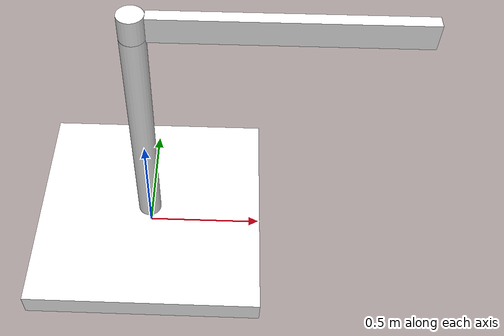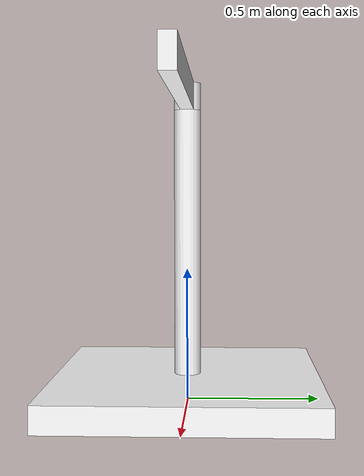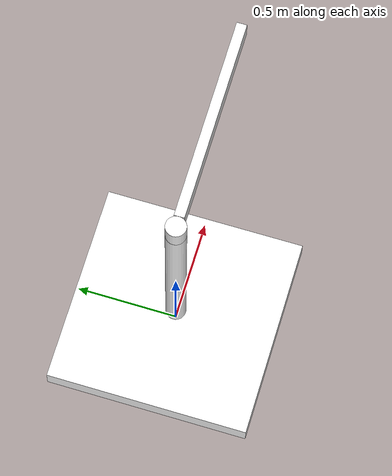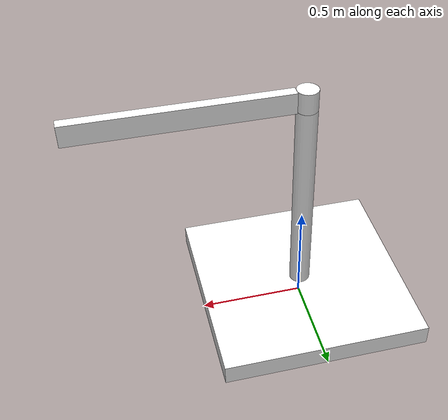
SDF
<?xml version="1.0" ?>
<sdf version="1.5">
  <model name="dxsim-one">
    <link name="arm_base">
      <inertial>
        <pose>0 0 0.00099 0 0 0</pose>
        <inertia>
          <ixx>1.11</ixx>
          <ixy>0</ixy>
          <ixz>0</ixz>
          <iyy>100.11</iyy>
          <iyz>0</iyz>
          <izz>1.01</izz>
        </inertia>
        <mass>101.0</mass>
      </inertial>
      <collision name="arm_base_geom">
        <pose>0 0 0.05 0 0 0</pose>
        <geometry>
          <box>
            <size>1.0 1.0 0.1</size>
          </box>
        </geometry>
      </collision>
      <visual name="arm_base_geom_visual">
        <pose>0 0 0.05 0 0 0</pose>
        <geometry>
          <box>
            <size>1.0 1.0 0.1</size>
          </box>
        </geometry>
        <material>
          <ambient>0.2 0.2 0.8 1</ambient>
          <diffuse>1.0 1.0 1.0 1</diffuse>
        </material>
      </visual>
      <collision name="arm_base_geom_arm_trunk">
        <pose>0 0 0.6 0 0 0</pose>
        <geometry>
          <cylinder>
            <radius>0.05</radius>
            <length>1.0</length>
          </cylinder>
        </geometry>
      </collision>
      <visual name="arm_base_geom_arm_trunk_visual">
        <pose>0 0 0.6 0 0 0</pose>
        <geometry>
          <cylinder>
            <radius>0.05</radius>
            <length>1.0</length>
          </cylinder>
        </geometry>
        <material>
          <ambient>0.8 0.2 0.2 1</ambient>
          <diffuse>1.0 1.0 1.0 1</diffuse>
        </material>
      </visual>
    </link>
    <link name="arm_shoulder_pan">
      <pose>0 0 1.1 0 0 0</pose>
      <inertial>
        <pose>0.045455 0 0 0 0 0</pose>
        <inertia>
          <ixx>0.011</ixx>
          <ixy>0</ixy>
          <ixz>0</ixz>
          <iyy>0.0225</iyy>
          <iyz>0</iyz>
          <izz>0.0135</izz>
        </inertia>
        <mass>1.1</mass>
      </inertial>
      <collision name="arm_shoulder_pan_geom">
        <pose>0 0 0.05 0 0 0</pose>
        <geometry>
          <cylinder>
            <radius>0.05</radius>
            <length>0.1</length>
          </cylinder>
        </geometry>
      </collision>
      <visual name="arm_shoulder_pan_geom_visual">
        <pose>0 0 0.05 0 0 0</pose>
        <geometry>
          <cylinder>
            <radius>0.05</radius>
            <length>0.1</length>
          </cylinder>
        </geometry>
        <material>
          <ambient>0.8 0.8 0.2 1</ambient>
          <diffuse>1.0 1.0 1.0 1</diffuse>
        </material>
      </visual>
      <collision name="arm_shoulder_pan_geom_arm_shoulder">
        <pose>0.55 0 0.05 0 0 0</pose>
        <geometry>
          <box>
            <size>1.0 0.05 0.1</size>
          </box>
        </geometry>
      </collision>
      <visual name="arm_shoulder_pan_geom_arm_shoulder_visual">
        <pose>0.55 0 0.05 0 0 0</pose>
        <geometry>
          <box>
            <size>1.0 0.05 0.1</size>
          </box>
        </geometry>
        <material>
          <ambient>0.8 0.8 0.2 1</ambient>
          <diffuse>1.0 1.0 1.0 1</diffuse>
        </material>
      </visual>
    </link>

    <joint name="arm_shoulder_pan_joint" type="revolute">
      <parent>arm_base</parent>
      <child>arm_shoulder_pan</child>
      <axis>
        <dynamics>
          <damping>1.000000</damping>
          <friction>0.000000</friction>
        </dynamics>
        <xyz>0 0 1</xyz>
        <use_parent_model_frame>true</use_parent_model_frame>
      </axis>
    </joint>

    <joint name="arm_base_joint" type="fixed">
      <parent>world</parent>
      <child>arm_base</child>
    </joint>

    <plugin name="dxsim" filename="dxsim-gazebo.so">
      <pty>/tmp/pty-dxsim-one</pty>
      <period>1e-3</period>
      <motors>
        <motor>
          <joint spin="ccw">arm_shoulder_pan_joint</joint>
          <eeprom>/tmp/dxsim-one-id1</eeprom>
          <model>MX64T</model>
          <p0>0.0</p0>
          <v0>0.0</v0>
          <id>1</id>
          <noise>0</noise>
          <debug>0</debug>
        </motor>
      </motors>
    </plugin>
  </model>
</sdf>
